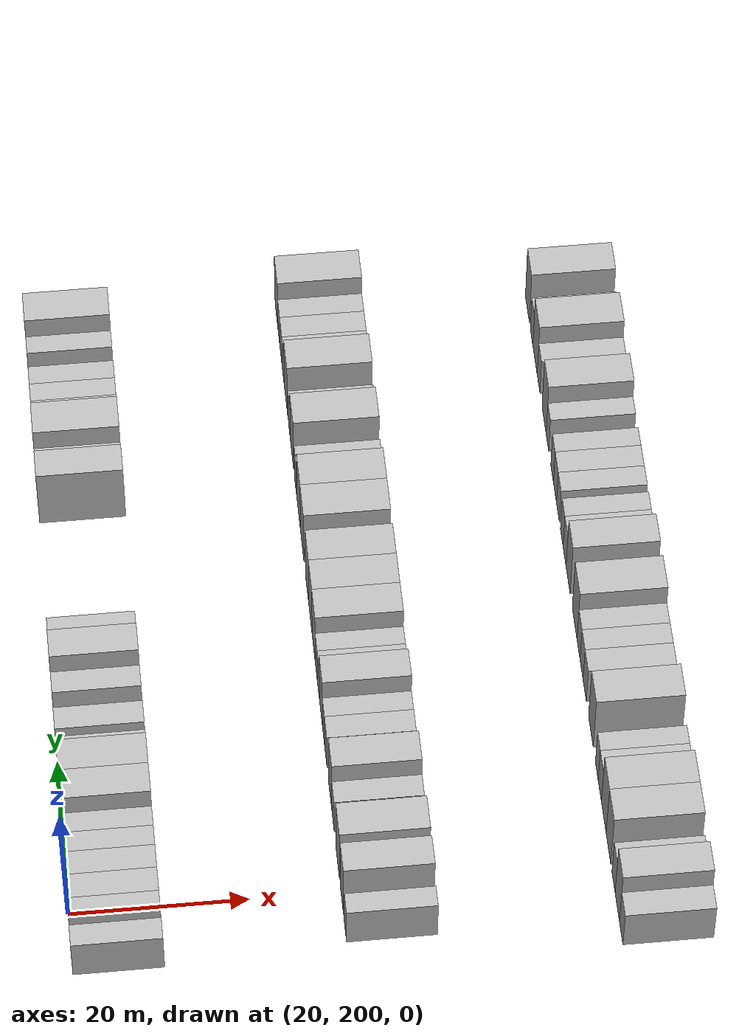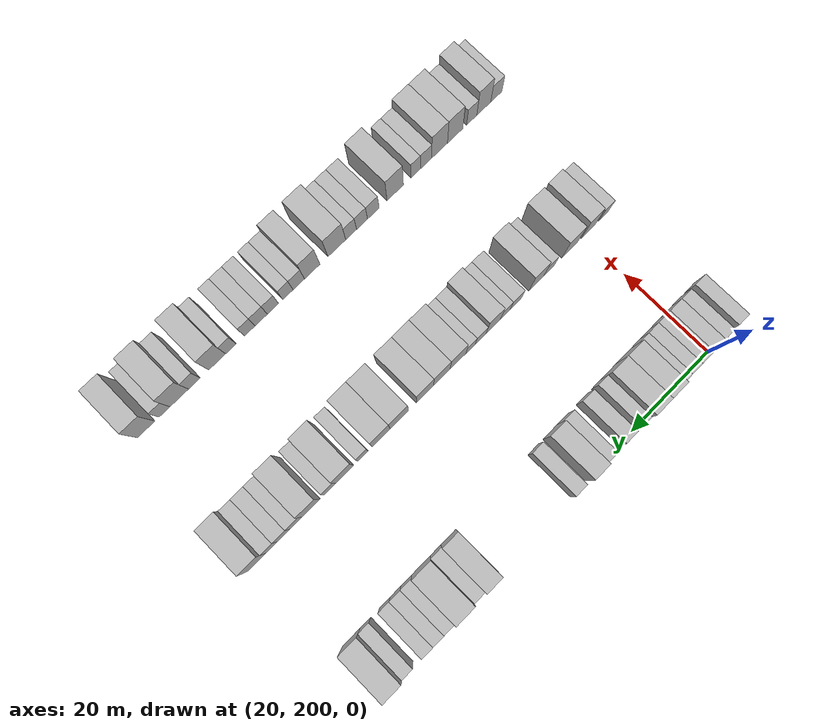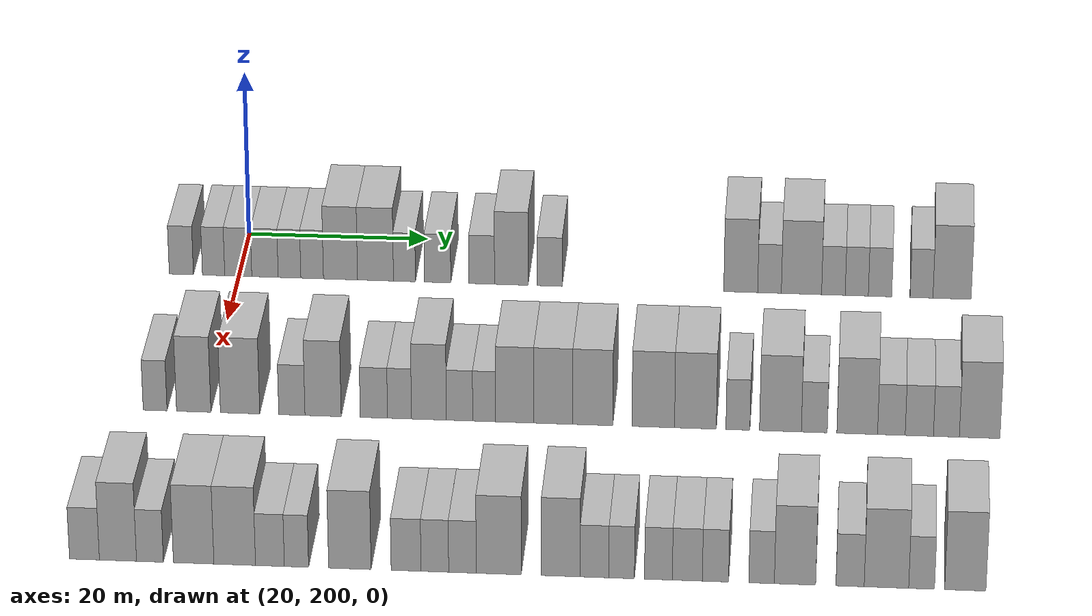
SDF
<sdf version="1.6">
 <world name="default">
  <model name="building_117">
   <static>1</static>
   <pose>25.0000 193.6157 0 0.000000 0.000000 0.000000</pose>
   <link name="link">
    <pose>0 0 3.00 0 0 0</pose>
    <collision name="collision"><geometry><box><size>10.0000 2.6684 6.0000</size></box></geometry></collision>
    <visual name="visual">
     <cast_shadows>0</cast_shadows>
     <geometry><box><size>10.0000 2.6684 6.0000</size></box></geometry>
     <material>
      <script>
       <uri>model://HANNAS_wall/materials/scripts</uri>
       <uri>model://HANNAS_wall/materials/textures</uri>
       <name>vrc/HANNAS_wall</name>
      </script>
     </material>
    </visual>
   </link>
  </model>
  <model name="building_118">
   <static>1</static>
   <pose>25.0000 197.1840 0 0.000000 0.000000 0.000000</pose>
   <link name="link">
    <pose>0 0 3.00 0 0 0</pose>
    <collision name="collision"><geometry><box><size>10.0000 2.4684 6.0000</size></box></geometry></collision>
    <visual name="visual">
     <cast_shadows>0</cast_shadows>
     <geometry><box><size>10.0000 2.4684 6.0000</size></box></geometry>
     <material>
      <script>
       <uri>model://HANNAS_wall/materials/scripts</uri>
       <uri>model://HANNAS_wall/materials/textures</uri>
       <name>vrc/HANNAS_wall</name>
      </script>
     </material>
    </visual>
   </link>
  </model>
  <model name="building_119">
   <static>1</static>
   <pose>25.0000 199.9133 0 0.000000 0.000000 0.000000</pose>
   <link name="link">
    <pose>0 0 3.00 0 0 0</pose>
    <collision name="collision"><geometry><box><size>10.0000 2.9902 6.0000</size></box></geometry></collision>
    <visual name="visual">
     <cast_shadows>0</cast_shadows>
     <geometry><box><size>10.0000 2.9902 6.0000</size></box></geometry>
     <material>
      <script>
       <uri>model://HANNAS_wall/materials/scripts</uri>
       <uri>model://HANNAS_wall/materials/textures</uri>
       <name>vrc/HANNAS_wall</name>
      </script>
     </material>
    </visual>
   </link>
  </model>
  <model name="building_120">
   <static>1</static>
   <pose>25.0000 202.8676 0 0.000000 0.000000 0.000000</pose>
   <link name="link">
    <pose>0 0 3.00 0 0 0</pose>
    <collision name="collision"><geometry><box><size>10.0000 2.9184 6.0000</size></box></geometry></collision>
    <visual name="visual">
     <cast_shadows>0</cast_shadows>
     <geometry><box><size>10.0000 2.9184 6.0000</size></box></geometry>
     <material>
      <script>
       <uri>model://HANNAS_wall/materials/scripts</uri>
       <uri>model://HANNAS_wall/materials/textures</uri>
       <name>vrc/HANNAS_wall</name>
      </script>
     </material>
    </visual>
   </link>
  </model>
  <model name="building_121">
   <static>1</static>
   <pose>25.0000 205.5789 0 0.000000 0.000000 0.000000</pose>
   <link name="link">
    <pose>0 0 3.00 0 0 0</pose>
    <collision name="collision"><geometry><box><size>10.0000 2.5044 6.0000</size></box></geometry></collision>
    <visual name="visual">
     <cast_shadows>0</cast_shadows>
     <geometry><box><size>10.0000 2.5044 6.0000</size></box></geometry>
     <material>
      <script>
       <uri>model://HANNAS_wall/materials/scripts</uri>
       <uri>model://HANNAS_wall/materials/textures</uri>
       <name>vrc/HANNAS_wall</name>
      </script>
     </material>
    </visual>
   </link>
  </model>
  <model name="building_122">
   <static>1</static>
   <pose>25.0000 208.0792 0 0.000000 0.000000 0.000000</pose>
   <link name="link">
    <pose>0 0 3.00 0 0 0</pose>
    <collision name="collision"><geometry><box><size>10.0000 2.4962 6.0000</size></box></geometry></collision>
    <visual name="visual">
     <cast_shadows>0</cast_shadows>
     <geometry><box><size>10.0000 2.4962 6.0000</size></box></geometry>
     <material>
      <script>
       <uri>model://HANNAS_wall/materials/scripts</uri>
       <uri>model://HANNAS_wall/materials/textures</uri>
       <name>vrc/HANNAS_wall</name>
      </script>
     </material>
    </visual>
   </link>
  </model>
  <model name="building_123">
   <static>1</static>
   <pose>25.0000 211.2091 0 0.000000 0.000000 0.000000</pose>
   <link name="link">
    <pose>0 0 4.50 0 0 0</pose>
    <collision name="collision"><geometry><box><size>10.0000 3.7634 9.0000</size></box></geometry></collision>
    <visual name="visual">
     <cast_shadows>0</cast_shadows>
     <geometry><box><size>10.0000 3.7634 9.0000</size></box></geometry>
     <material>
      <script>
       <uri>model://HANNAS_wall/materials/scripts</uri>
       <uri>model://HANNAS_wall/materials/textures</uri>
       <name>vrc/HANNAS_wall</name>
      </script>
     </material>
    </visual>
   </link>
  </model>
  <model name="building_124">
   <static>1</static>
   <pose>25.0000 215.0703 0 0.000000 0.000000 0.000000</pose>
   <link name="link">
    <pose>0 0 4.50 0 0 0</pose>
    <collision name="collision"><geometry><box><size>10.0000 3.9590 9.0000</size></box></geometry></collision>
    <visual name="visual">
     <cast_shadows>0</cast_shadows>
     <geometry><box><size>10.0000 3.9590 9.0000</size></box></geometry>
     <material>
      <script>
       <uri>model://HANNAS_wall/materials/scripts</uri>
       <uri>model://HANNAS_wall/materials/textures</uri>
       <name>vrc/HANNAS_wall</name>
      </script>
     </material>
    </visual>
   </link>
  </model>
  <model name="building_125">
   <static>1</static>
   <pose>25.0000 218.2602 0 0.000000 0.000000 0.000000</pose>
   <link name="link">
    <pose>0 0 3.00 0 0 0</pose>
    <collision name="collision"><geometry><box><size>10.0000 2.4207 6.0000</size></box></geometry></collision>
    <visual name="visual">
     <cast_shadows>0</cast_shadows>
     <geometry><box><size>10.0000 2.4207 6.0000</size></box></geometry>
     <material>
      <script>
       <uri>model://HANNAS_wall/materials/scripts</uri>
       <uri>model://HANNAS_wall/materials/textures</uri>
       <name>vrc/HANNAS_wall</name>
      </script>
     </material>
    </visual>
   </link>
  </model>
  <model name="building_126">
   <static>1</static>
   <pose>25.0000 221.9155 0 0.000000 0.000000 0.000000</pose>
   <link name="link">
    <pose>0 0 3.00 0 0 0</pose>
    <collision name="collision"><geometry><box><size>10.0000 2.8899 6.0000</size></box></geometry></collision>
    <visual name="visual">
     <cast_shadows>0</cast_shadows>
     <geometry><box><size>10.0000 2.8899 6.0000</size></box></geometry>
     <material>
      <script>
       <uri>model://HANNAS_wall/materials/scripts</uri>
       <uri>model://HANNAS_wall/materials/textures</uri>
       <name>vrc/HANNAS_wall</name>
      </script>
     </material>
    </visual>
   </link>
  </model>
  <model name="building_127">
   <static>1</static>
   <pose>25.0000 226.7656 0 0.000000 0.000000 0.000000</pose>
   <link name="link">
    <pose>0 0 3.00 0 0 0</pose>
    <collision name="collision"><geometry><box><size>10.0000 2.8103 6.0000</size></box></geometry></collision>
    <visual name="visual">
     <cast_shadows>0</cast_shadows>
     <geometry><box><size>10.0000 2.8103 6.0000</size></box></geometry>
     <material>
      <script>
       <uri>model://HANNAS_wall/materials/scripts</uri>
       <uri>model://HANNAS_wall/materials/textures</uri>
       <name>vrc/HANNAS_wall</name>
      </script>
     </material>
    </visual>
   </link>
  </model>
  <model name="building_128">
   <static>1</static>
   <pose>25.0000 230.0128 0 0.000000 0.000000 0.000000</pose>
   <link name="link">
    <pose>0 0 4.50 0 0 0</pose>
    <collision name="collision"><geometry><box><size>10.0000 3.6841 9.0000</size></box></geometry></collision>
    <visual name="visual">
     <cast_shadows>0</cast_shadows>
     <geometry><box><size>10.0000 3.6841 9.0000</size></box></geometry>
     <material>
      <script>
       <uri>model://HANNAS_wall/materials/scripts</uri>
       <uri>model://HANNAS_wall/materials/textures</uri>
       <name>vrc/HANNAS_wall</name>
      </script>
     </material>
    </visual>
   </link>
  </model>
  <model name="building_129">
   <static>1</static>
   <pose>25.0000 234.2269 0 0.000000 0.000000 0.000000</pose>
   <link name="link">
    <pose>0 0 3.00 0 0 0</pose>
    <collision name="collision"><geometry><box><size>10.0000 2.7442 6.0000</size></box></geometry></collision>
    <visual name="visual">
     <cast_shadows>0</cast_shadows>
     <geometry><box><size>10.0000 2.7442 6.0000</size></box></geometry>
     <material>
      <script>
       <uri>model://HANNAS_wall/materials/scripts</uri>
       <uri>model://HANNAS_wall/materials/textures</uri>
       <name>vrc/HANNAS_wall</name>
      </script>
     </material>
    </visual>
   </link>
  </model>
  <model name="building_130">
   <static>1</static>
   <pose>25.0000 255.1570 0 0.000000 0.000000 0.000000</pose>
   <link name="link">
    <pose>0 0 4.50 0 0 0</pose>
    <collision name="collision"><geometry><box><size>10.0000 3.7054 9.0000</size></box></geometry></collision>
    <visual name="visual">
     <cast_shadows>0</cast_shadows>
     <geometry><box><size>10.0000 3.7054 9.0000</size></box></geometry>
     <material>
      <script>
       <uri>model://HANNAS_wall/materials/scripts</uri>
       <uri>model://HANNAS_wall/materials/textures</uri>
       <name>vrc/HANNAS_wall</name>
      </script>
     </material>
    </visual>
   </link>
  </model>
  <model name="building_131">
   <static>1</static>
   <pose>25.0000 258.3027 0 0.000000 0.000000 0.000000</pose>
   <link name="link">
    <pose>0 0 3.00 0 0 0</pose>
    <collision name="collision"><geometry><box><size>10.0000 2.5860 6.0000</size></box></geometry></collision>
    <visual name="visual">
     <cast_shadows>0</cast_shadows>
     <geometry><box><size>10.0000 2.5860 6.0000</size></box></geometry>
     <material>
      <script>
       <uri>model://HANNAS_wall/materials/scripts</uri>
       <uri>model://HANNAS_wall/materials/textures</uri>
       <name>vrc/HANNAS_wall</name>
      </script>
     </material>
    </visual>
   </link>
  </model>
  <model name="building_132">
   <static>1</static>
   <pose>25.0000 261.7933 0 0.000000 0.000000 0.000000</pose>
   <link name="link">
    <pose>0 0 4.50 0 0 0</pose>
    <collision name="collision"><geometry><box><size>10.0000 4.3951 9.0000</size></box></geometry></collision>
    <visual name="visual">
     <cast_shadows>0</cast_shadows>
     <geometry><box><size>10.0000 4.3951 9.0000</size></box></geometry>
     <material>
      <script>
       <uri>model://HANNAS_wall/materials/scripts</uri>
       <uri>model://HANNAS_wall/materials/textures</uri>
       <name>vrc/HANNAS_wall</name>
      </script>
     </material>
    </visual>
   </link>
  </model>
  <model name="building_133">
   <static>1</static>
   <pose>25.0000 265.2767 0 0.000000 0.000000 0.000000</pose>
   <link name="link">
    <pose>0 0 3.00 0 0 0</pose>
    <collision name="collision"><geometry><box><size>10.0000 2.5717 6.0000</size></box></geometry></collision>
    <visual name="visual">
     <cast_shadows>0</cast_shadows>
     <geometry><box><size>10.0000 2.5717 6.0000</size></box></geometry>
     <material>
      <script>
       <uri>model://HANNAS_wall/materials/scripts</uri>
       <uri>model://HANNAS_wall/materials/textures</uri>
       <name>vrc/HANNAS_wall</name>
      </script>
     </material>
    </visual>
   </link>
  </model>
  <model name="building_134">
   <static>1</static>
   <pose>25.0000 267.8227 0 0.000000 0.000000 0.000000</pose>
   <link name="link">
    <pose>0 0 3.00 0 0 0</pose>
    <collision name="collision"><geometry><box><size>10.0000 2.5203 6.0000</size></box></geometry></collision>
    <visual name="visual">
     <cast_shadows>0</cast_shadows>
     <geometry><box><size>10.0000 2.5203 6.0000</size></box></geometry>
     <material>
      <script>
       <uri>model://HANNAS_wall/materials/scripts</uri>
       <uri>model://HANNAS_wall/materials/textures</uri>
       <name>vrc/HANNAS_wall</name>
      </script>
     </material>
    </visual>
   </link>
  </model>
  <model name="building_135">
   <static>1</static>
   <pose>25.0000 270.3590 0 0.000000 0.000000 0.000000</pose>
   <link name="link">
    <pose>0 0 3.00 0 0 0</pose>
    <collision name="collision"><geometry><box><size>10.0000 2.5524 6.0000</size></box></geometry></collision>
    <visual name="visual">
     <cast_shadows>0</cast_shadows>
     <geometry><box><size>10.0000 2.5524 6.0000</size></box></geometry>
     <material>
      <script>
       <uri>model://HANNAS_wall/materials/scripts</uri>
       <uri>model://HANNAS_wall/materials/textures</uri>
       <name>vrc/HANNAS_wall</name>
      </script>
     </material>
    </visual>
   </link>
  </model>
  <model name="building_136">
   <static>1</static>
   <pose>25.0000 274.8785 0 0.000000 0.000000 0.000000</pose>
   <link name="link">
    <pose>0 0 3.00 0 0 0</pose>
    <collision name="collision"><geometry><box><size>10.0000 2.4865 6.0000</size></box></geometry></collision>
    <visual name="visual">
     <cast_shadows>0</cast_shadows>
     <geometry><box><size>10.0000 2.4865 6.0000</size></box></geometry>
     <material>
      <script>
       <uri>model://HANNAS_wall/materials/scripts</uri>
       <uri>model://HANNAS_wall/materials/textures</uri>
       <name>vrc/HANNAS_wall</name>
      </script>
     </material>
    </visual>
   </link>
  </model>
  <model name="building_137">
   <static>1</static>
   <pose>25.0000 278.1976 0 0.000000 0.000000 0.000000</pose>
   <link name="link">
    <pose>0 0 4.50 0 0 0</pose>
    <collision name="collision"><geometry><box><size>10.0000 4.1517 9.0000</size></box></geometry></collision>
    <visual name="visual">
     <cast_shadows>0</cast_shadows>
     <geometry><box><size>10.0000 4.1517 9.0000</size></box></geometry>
     <material>
      <script>
       <uri>model://HANNAS_wall/materials/scripts</uri>
       <uri>model://HANNAS_wall/materials/textures</uri>
       <name>vrc/HANNAS_wall</name>
      </script>
     </material>
    </visual>
   </link>
  </model>
  <model name="building_244">
   <static>1</static>
   <pose>55.0000 194.7780 0 0.000000 0.000000 0.000000</pose>
   <link name="link">
    <pose>0 0 3.00 0 0 0</pose>
    <collision name="collision"><geometry><box><size>10.0000 2.5157 6.0000</size></box></geometry></collision>
    <visual name="visual">
     <cast_shadows>0</cast_shadows>
     <geometry><box><size>10.0000 2.5157 6.0000</size></box></geometry>
     <material>
      <script>
       <uri>model://HANNAS_wall/materials/scripts</uri>
       <uri>model://HANNAS_wall/materials/textures</uri>
       <name>vrc/HANNAS_wall</name>
      </script>
     </material>
    </visual>
   </link>
  </model>
  <model name="building_245">
   <static>1</static>
   <pose>55.0000 198.8455 0 0.000000 0.000000 0.000000</pose>
   <link name="link">
    <pose>0 0 4.50 0 0 0</pose>
    <collision name="collision"><geometry><box><size>10.0000 3.6194 9.0000</size></box></geometry></collision>
    <visual name="visual">
     <cast_shadows>0</cast_shadows>
     <geometry><box><size>10.0000 3.6194 9.0000</size></box></geometry>
     <material>
      <script>
       <uri>model://HANNAS_wall/materials/scripts</uri>
       <uri>model://HANNAS_wall/materials/textures</uri>
       <name>vrc/HANNAS_wall</name>
      </script>
     </material>
    </visual>
   </link>
  </model>
  <model name="building_246">
   <static>1</static>
   <pose>55.0000 203.7291 0 0.000000 0.000000 0.000000</pose>
   <link name="link">
    <pose>0 0 4.50 0 0 0</pose>
    <collision name="collision"><geometry><box><size>10.0000 4.1476 9.0000</size></box></geometry></collision>
    <visual name="visual">
     <cast_shadows>0</cast_shadows>
     <geometry><box><size>10.0000 4.1476 9.0000</size></box></geometry>
     <material>
      <script>
       <uri>model://HANNAS_wall/materials/scripts</uri>
       <uri>model://HANNAS_wall/materials/textures</uri>
       <name>vrc/HANNAS_wall</name>
      </script>
     </material>
    </visual>
   </link>
  </model>
  <model name="building_247">
   <static>1</static>
   <pose>55.0000 209.1812 0 0.000000 0.000000 0.000000</pose>
   <link name="link">
    <pose>0 0 3.00 0 0 0</pose>
    <collision name="collision"><geometry><box><size>10.0000 2.7566 6.0000</size></box></geometry></collision>
    <visual name="visual">
     <cast_shadows>0</cast_shadows>
     <geometry><box><size>10.0000 2.7566 6.0000</size></box></geometry>
     <material>
      <script>
       <uri>model://HANNAS_wall/materials/scripts</uri>
       <uri>model://HANNAS_wall/materials/textures</uri>
       <name>vrc/HANNAS_wall</name>
      </script>
     </material>
    </visual>
   </link>
  </model>
  <model name="building_248">
   <static>1</static>
   <pose>55.0000 212.4629 0 0.000000 0.000000 0.000000</pose>
   <link name="link">
    <pose>0 0 4.50 0 0 0</pose>
    <collision name="collision"><geometry><box><size>10.0000 3.8070 9.0000</size></box></geometry></collision>
    <visual name="visual">
     <cast_shadows>0</cast_shadows>
     <geometry><box><size>10.0000 3.8070 9.0000</size></box></geometry>
     <material>
      <script>
       <uri>model://HANNAS_wall/materials/scripts</uri>
       <uri>model://HANNAS_wall/materials/textures</uri>
       <name>vrc/HANNAS_wall</name>
      </script>
     </material>
    </visual>
   </link>
  </model>
  <model name="building_249">
   <static>1</static>
   <pose>55.0000 217.7997 0 0.000000 0.000000 0.000000</pose>
   <link name="link">
    <pose>0 0 3.00 0 0 0</pose>
    <collision name="collision"><geometry><box><size>10.0000 2.8664 6.0000</size></box></geometry></collision>
    <visual name="visual">
     <cast_shadows>0</cast_shadows>
     <geometry><box><size>10.0000 2.8664 6.0000</size></box></geometry>
     <material>
      <script>
       <uri>model://HANNAS_wall/materials/scripts</uri>
       <uri>model://HANNAS_wall/materials/textures</uri>
       <name>vrc/HANNAS_wall</name>
      </script>
     </material>
    </visual>
   </link>
  </model>
  <model name="building_250">
   <static>1</static>
   <pose>55.0000 220.4899 0 0.000000 0.000000 0.000000</pose>
   <link name="link">
    <pose>0 0 3.00 0 0 0</pose>
    <collision name="collision"><geometry><box><size>10.0000 2.5140 6.0000</size></box></geometry></collision>
    <visual name="visual">
     <cast_shadows>0</cast_shadows>
     <geometry><box><size>10.0000 2.5140 6.0000</size></box></geometry>
     <material>
      <script>
       <uri>model://HANNAS_wall/materials/scripts</uri>
       <uri>model://HANNAS_wall/materials/textures</uri>
       <name>vrc/HANNAS_wall</name>
      </script>
     </material>
    </visual>
   </link>
  </model>
  <model name="building_251">
   <static>1</static>
   <pose>55.0000 223.5747 0 0.000000 0.000000 0.000000</pose>
   <link name="link">
    <pose>0 0 4.50 0 0 0</pose>
    <collision name="collision"><geometry><box><size>10.0000 3.6557 9.0000</size></box></geometry></collision>
    <visual name="visual">
     <cast_shadows>0</cast_shadows>
     <geometry><box><size>10.0000 3.6557 9.0000</size></box></geometry>
     <material>
      <script>
       <uri>model://HANNAS_wall/materials/scripts</uri>
       <uri>model://HANNAS_wall/materials/textures</uri>
       <name>vrc/HANNAS_wall</name>
      </script>
     </material>
    </visual>
   </link>
  </model>
  <model name="building_252">
   <static>1</static>
   <pose>55.0000 226.7797 0 0.000000 0.000000 0.000000</pose>
   <link name="link">
    <pose>0 0 3.00 0 0 0</pose>
    <collision name="collision"><geometry><box><size>10.0000 2.7542 6.0000</size></box></geometry></collision>
    <visual name="visual">
     <cast_shadows>0</cast_shadows>
     <geometry><box><size>10.0000 2.7542 6.0000</size></box></geometry>
     <material>
      <script>
       <uri>model://HANNAS_wall/materials/scripts</uri>
       <uri>model://HANNAS_wall/materials/textures</uri>
       <name>vrc/HANNAS_wall</name>
      </script>
     </material>
    </visual>
   </link>
  </model>
  <model name="building_253">
   <static>1</static>
   <pose>55.0000 229.3570 0 0.000000 0.000000 0.000000</pose>
   <link name="link">
    <pose>0 0 3.00 0 0 0</pose>
    <collision name="collision"><geometry><box><size>10.0000 2.4004 6.0000</size></box></geometry></collision>
    <visual name="visual">
     <cast_shadows>0</cast_shadows>
     <geometry><box><size>10.0000 2.4004 6.0000</size></box></geometry>
     <material>
      <script>
       <uri>model://HANNAS_wall/materials/scripts</uri>
       <uri>model://HANNAS_wall/materials/textures</uri>
       <name>vrc/HANNAS_wall</name>
      </script>
     </material>
    </visual>
   </link>
  </model>
  <model name="building_254">
   <static>1</static>
   <pose>55.0000 232.5470 0 0.000000 0.000000 0.000000</pose>
   <link name="link">
    <pose>0 0 4.50 0 0 0</pose>
    <collision name="collision"><geometry><box><size>10.0000 3.9797 9.0000</size></box></geometry></collision>
    <visual name="visual">
     <cast_shadows>0</cast_shadows>
     <geometry><box><size>10.0000 3.9797 9.0000</size></box></geometry>
     <material>
      <script>
       <uri>model://HANNAS_wall/materials/scripts</uri>
       <uri>model://HANNAS_wall/materials/textures</uri>
       <name>vrc/HANNAS_wall</name>
      </script>
     </material>
    </visual>
   </link>
  </model>
  <model name="building_255">
   <static>1</static>
   <pose>55.0000 236.5752 0 0.000000 0.000000 0.000000</pose>
   <link name="link">
    <pose>0 0 4.50 0 0 0</pose>
    <collision name="collision"><geometry><box><size>10.0000 4.0766 9.0000</size></box></geometry></collision>
    <visual name="visual">
     <cast_shadows>0</cast_shadows>
     <geometry><box><size>10.0000 4.0766 9.0000</size></box></geometry>
     <material>
      <script>
       <uri>model://HANNAS_wall/materials/scripts</uri>
       <uri>model://HANNAS_wall/materials/textures</uri>
       <name>vrc/HANNAS_wall</name>
      </script>
     </material>
    </visual>
   </link>
  </model>
  <model name="building_256">
   <static>1</static>
   <pose>55.0000 240.7073 0 0.000000 0.000000 0.000000</pose>
   <link name="link">
    <pose>0 0 4.50 0 0 0</pose>
    <collision name="collision"><geometry><box><size>10.0000 4.1876 9.0000</size></box></geometry></collision>
    <visual name="visual">
     <cast_shadows>0</cast_shadows>
     <geometry><box><size>10.0000 4.1876 9.0000</size></box></geometry>
     <material>
      <script>
       <uri>model://HANNAS_wall/materials/scripts</uri>
       <uri>model://HANNAS_wall/materials/textures</uri>
       <name>vrc/HANNAS_wall</name>
      </script>
     </material>
    </visual>
   </link>
  </model>
  <model name="building_257">
   <static>1</static>
   <pose>55.0000 247.0190 0 0.000000 0.000000 0.000000</pose>
   <link name="link">
    <pose>0 0 4.50 0 0 0</pose>
    <collision name="collision"><geometry><box><size>10.0000 4.4359 9.0000</size></box></geometry></collision>
    <visual name="visual">
     <cast_shadows>0</cast_shadows>
     <geometry><box><size>10.0000 4.4359 9.0000</size></box></geometry>
     <material>
      <script>
       <uri>model://HANNAS_wall/materials/scripts</uri>
       <uri>model://HANNAS_wall/materials/textures</uri>
       <name>vrc/HANNAS_wall</name>
      </script>
     </material>
    </visual>
   </link>
  </model>
  <model name="building_258">
   <static>1</static>
   <pose>55.0000 251.4141 0 0.000000 0.000000 0.000000</pose>
   <link name="link">
    <pose>0 0 4.50 0 0 0</pose>
    <collision name="collision"><geometry><box><size>10.0000 4.3542 9.0000</size></box></geometry></collision>
    <visual name="visual">
     <cast_shadows>0</cast_shadows>
     <geometry><box><size>10.0000 4.3542 9.0000</size></box></geometry>
     <material>
      <script>
       <uri>model://HANNAS_wall/materials/scripts</uri>
       <uri>model://HANNAS_wall/materials/textures</uri>
       <name>vrc/HANNAS_wall</name>
      </script>
     </material>
    </visual>
   </link>
  </model>
  <model name="building_259">
   <static>1</static>
   <pose>55.0000 255.8382 0 0.000000 0.000000 0.000000</pose>
   <link name="link">
    <pose>0 0 3.00 0 0 0</pose>
    <collision name="collision"><geometry><box><size>10.0000 2.4940 6.0000</size></box></geometry></collision>
    <visual name="visual">
     <cast_shadows>0</cast_shadows>
     <geometry><box><size>10.0000 2.4940 6.0000</size></box></geometry>
     <material>
      <script>
       <uri>model://HANNAS_wall/materials/scripts</uri>
       <uri>model://HANNAS_wall/materials/textures</uri>
       <name>vrc/HANNAS_wall</name>
      </script>
     </material>
    </visual>
   </link>
  </model>
  <model name="building_260">
   <static>1</static>
   <pose>55.0000 260.2617 0 0.000000 0.000000 0.000000</pose>
   <link name="link">
    <pose>0 0 4.50 0 0 0</pose>
    <collision name="collision"><geometry><box><size>10.0000 4.3530 9.0000</size></box></geometry></collision>
    <visual name="visual">
     <cast_shadows>0</cast_shadows>
     <geometry><box><size>10.0000 4.3530 9.0000</size></box></geometry>
     <material>
      <script>
       <uri>model://HANNAS_wall/materials/scripts</uri>
       <uri>model://HANNAS_wall/materials/textures</uri>
       <name>vrc/HANNAS_wall</name>
      </script>
     </material>
    </visual>
   </link>
  </model>
  <model name="building_261">
   <static>1</static>
   <pose>55.0000 263.7823 0 0.000000 0.000000 0.000000</pose>
   <link name="link">
    <pose>0 0 3.00 0 0 0</pose>
    <collision name="collision"><geometry><box><size>10.0000 2.6881 6.0000</size></box></geometry></collision>
    <visual name="visual">
     <cast_shadows>0</cast_shadows>
     <geometry><box><size>10.0000 2.6881 6.0000</size></box></geometry>
     <material>
      <script>
       <uri>model://HANNAS_wall/materials/scripts</uri>
       <uri>model://HANNAS_wall/materials/textures</uri>
       <name>vrc/HANNAS_wall</name>
      </script>
     </material>
    </visual>
   </link>
  </model>
  <model name="building_262">
   <static>1</static>
   <pose>55.0000 268.2366 0 0.000000 0.000000 0.000000</pose>
   <link name="link">
    <pose>0 0 4.50 0 0 0</pose>
    <collision name="collision"><geometry><box><size>10.0000 4.2204 9.0000</size></box></geometry></collision>
    <visual name="visual">
     <cast_shadows>0</cast_shadows>
     <geometry><box><size>10.0000 4.2204 9.0000</size></box></geometry>
     <material>
      <script>
       <uri>model://HANNAS_wall/materials/scripts</uri>
       <uri>model://HANNAS_wall/materials/textures</uri>
       <name>vrc/HANNAS_wall</name>
      </script>
     </material>
    </visual>
   </link>
  </model>
  <model name="building_263">
   <static>1</static>
   <pose>55.0000 271.7790 0 0.000000 0.000000 0.000000</pose>
   <link name="link">
    <pose>0 0 3.00 0 0 0</pose>
    <collision name="collision"><geometry><box><size>10.0000 2.8643 6.0000</size></box></geometry></collision>
    <visual name="visual">
     <cast_shadows>0</cast_shadows>
     <geometry><box><size>10.0000 2.8643 6.0000</size></box></geometry>
     <material>
      <script>
       <uri>model://HANNAS_wall/materials/scripts</uri>
       <uri>model://HANNAS_wall/materials/textures</uri>
       <name>vrc/HANNAS_wall</name>
      </script>
     </material>
    </visual>
   </link>
  </model>
  <model name="building_264">
   <static>1</static>
   <pose>55.0000 274.6751 0 0.000000 0.000000 0.000000</pose>
   <link name="link">
    <pose>0 0 3.00 0 0 0</pose>
    <collision name="collision"><geometry><box><size>10.0000 2.9279 6.0000</size></box></geometry></collision>
    <visual name="visual">
     <cast_shadows>0</cast_shadows>
     <geometry><box><size>10.0000 2.9279 6.0000</size></box></geometry>
     <material>
      <script>
       <uri>model://HANNAS_wall/materials/scripts</uri>
       <uri>model://HANNAS_wall/materials/textures</uri>
       <name>vrc/HANNAS_wall</name>
      </script>
     </material>
    </visual>
   </link>
  </model>
  <model name="building_265">
   <static>1</static>
   <pose>55.0000 277.4817 0 0.000000 0.000000 0.000000</pose>
   <link name="link">
    <pose>0 0 3.00 0 0 0</pose>
    <collision name="collision"><geometry><box><size>10.0000 2.6854 6.0000</size></box></geometry></collision>
    <visual name="visual">
     <cast_shadows>0</cast_shadows>
     <geometry><box><size>10.0000 2.6854 6.0000</size></box></geometry>
     <material>
      <script>
       <uri>model://HANNAS_wall/materials/scripts</uri>
       <uri>model://HANNAS_wall/materials/textures</uri>
       <name>vrc/HANNAS_wall</name>
      </script>
     </material>
    </visual>
   </link>
  </model>
  <model name="building_266">
   <static>1</static>
   <pose>55.0000 280.9248 0 0.000000 0.000000 0.000000</pose>
   <link name="link">
    <pose>0 0 4.50 0 0 0</pose>
    <collision name="collision"><geometry><box><size>10.0000 4.2008 9.0000</size></box></geometry></collision>
    <visual name="visual">
     <cast_shadows>0</cast_shadows>
     <geometry><box><size>10.0000 4.2008 9.0000</size></box></geometry>
     <material>
      <script>
       <uri>model://HANNAS_wall/materials/scripts</uri>
       <uri>model://HANNAS_wall/materials/textures</uri>
       <name>vrc/HANNAS_wall</name>
      </script>
     </material>
    </visual>
   </link>
  </model>
  <model name="building_388">
   <static>1</static>
   <pose>85.0000 191.7627 0 0.000000 0.000000 0.000000</pose>
   <link name="link">
    <pose>0 0 3.00 0 0 0</pose>
    <collision name="collision"><geometry><box><size>10.0000 2.9922 6.0000</size></box></geometry></collision>
    <visual name="visual">
     <cast_shadows>0</cast_shadows>
     <geometry><box><size>10.0000 2.9922 6.0000</size></box></geometry>
     <material>
      <script>
       <uri>model://HANNAS_wall/materials/scripts</uri>
       <uri>model://HANNAS_wall/materials/textures</uri>
       <name>vrc/HANNAS_wall</name>
      </script>
     </material>
    </visual>
   </link>
  </model>
  <model name="building_389">
   <static>1</static>
   <pose>85.0000 195.1197 0 0.000000 0.000000 0.000000</pose>
   <link name="link">
    <pose>0 0 4.50 0 0 0</pose>
    <collision name="collision"><geometry><box><size>10.0000 3.7218 9.0000</size></box></geometry></collision>
    <visual name="visual">
     <cast_shadows>0</cast_shadows>
     <geometry><box><size>10.0000 3.7218 9.0000</size></box></geometry>
     <material>
      <script>
       <uri>model://HANNAS_wall/materials/scripts</uri>
       <uri>model://HANNAS_wall/materials/textures</uri>
       <name>vrc/HANNAS_wall</name>
      </script>
     </material>
    </visual>
   </link>
  </model>
  <model name="building_390">
   <static>1</static>
   <pose>85.0000 198.3272 0 0.000000 0.000000 0.000000</pose>
   <link name="link">
    <pose>0 0 3.00 0 0 0</pose>
    <collision name="collision"><geometry><box><size>10.0000 2.6933 6.0000</size></box></geometry></collision>
    <visual name="visual">
     <cast_shadows>0</cast_shadows>
     <geometry><box><size>10.0000 2.6933 6.0000</size></box></geometry>
     <material>
      <script>
       <uri>model://HANNAS_wall/materials/scripts</uri>
       <uri>model://HANNAS_wall/materials/textures</uri>
       <name>vrc/HANNAS_wall</name>
      </script>
     </material>
    </visual>
   </link>
  </model>
  <model name="building_391">
   <static>1</static>
   <pose>85.0000 202.7019 0 0.000000 0.000000 0.000000</pose>
   <link name="link">
    <pose>0 0 4.50 0 0 0</pose>
    <collision name="collision"><geometry><box><size>10.0000 4.0561 9.0000</size></box></geometry></collision>
    <visual name="visual">
     <cast_shadows>0</cast_shadows>
     <geometry><box><size>10.0000 4.0561 9.0000</size></box></geometry>
     <material>
      <script>
       <uri>model://HANNAS_wall/materials/scripts</uri>
       <uri>model://HANNAS_wall/materials/textures</uri>
       <name>vrc/HANNAS_wall</name>
      </script>
     </material>
    </visual>
   </link>
  </model>
  <model name="building_392">
   <static>1</static>
   <pose>85.0000 206.8115 0 0.000000 0.000000 0.000000</pose>
   <link name="link">
    <pose>0 0 4.50 0 0 0</pose>
    <collision name="collision"><geometry><box><size>10.0000 4.1630 9.0000</size></box></geometry></collision>
    <visual name="visual">
     <cast_shadows>0</cast_shadows>
     <geometry><box><size>10.0000 4.1630 9.0000</size></box></geometry>
     <material>
      <script>
       <uri>model://HANNAS_wall/materials/scripts</uri>
       <uri>model://HANNAS_wall/materials/textures</uri>
       <name>vrc/HANNAS_wall</name>
      </script>
     </material>
    </visual>
   </link>
  </model>
  <model name="building_393">
   <static>1</static>
   <pose>85.0000 210.3338 0 0.000000 0.000000 0.000000</pose>
   <link name="link">
    <pose>0 0 3.00 0 0 0</pose>
    <collision name="collision"><geometry><box><size>10.0000 2.8818 6.0000</size></box></geometry></collision>
    <visual name="visual">
     <cast_shadows>0</cast_shadows>
     <geometry><box><size>10.0000 2.8818 6.0000</size></box></geometry>
     <material>
      <script>
       <uri>model://HANNAS_wall/materials/scripts</uri>
       <uri>model://HANNAS_wall/materials/textures</uri>
       <name>vrc/HANNAS_wall</name>
      </script>
     </material>
    </visual>
   </link>
  </model>
  <model name="building_394">
   <static>1</static>
   <pose>85.0000 212.9844 0 0.000000 0.000000 0.000000</pose>
   <link name="link">
    <pose>0 0 3.00 0 0 0</pose>
    <collision name="collision"><geometry><box><size>10.0000 2.4195 6.0000</size></box></geometry></collision>
    <visual name="visual">
     <cast_shadows>0</cast_shadows>
     <geometry><box><size>10.0000 2.4195 6.0000</size></box></geometry>
     <material>
      <script>
       <uri>model://HANNAS_wall/materials/scripts</uri>
       <uri>model://HANNAS_wall/materials/textures</uri>
       <name>vrc/HANNAS_wall</name>
      </script>
     </material>
    </visual>
   </link>
  </model>
  <model name="building_395">
   <static>1</static>
   <pose>85.0000 218.3086 0 0.000000 0.000000 0.000000</pose>
   <link name="link">
    <pose>0 0 4.50 0 0 0</pose>
    <collision name="collision"><geometry><box><size>10.0000 4.2288 9.0000</size></box></geometry></collision>
    <visual name="visual">
     <cast_shadows>0</cast_shadows>
     <geometry><box><size>10.0000 4.2288 9.0000</size></box></geometry>
     <material>
      <script>
       <uri>model://HANNAS_wall/materials/scripts</uri>
       <uri>model://HANNAS_wall/materials/textures</uri>
       <name>vrc/HANNAS_wall</name>
      </script>
     </material>
    </visual>
   </link>
  </model>
  <model name="building_396">
   <static>1</static>
   <pose>85.0000 223.9092 0 0.000000 0.000000 0.000000</pose>
   <link name="link">
    <pose>0 0 3.00 0 0 0</pose>
    <collision name="collision"><geometry><box><size>10.0000 2.9724 6.0000</size></box></geometry></collision>
    <visual name="visual">
     <cast_shadows>0</cast_shadows>
     <geometry><box><size>10.0000 2.9724 6.0000</size></box></geometry>
     <material>
      <script>
       <uri>model://HANNAS_wall/materials/scripts</uri>
       <uri>model://HANNAS_wall/materials/textures</uri>
       <name>vrc/HANNAS_wall</name>
      </script>
     </material>
    </visual>
   </link>
  </model>
  <model name="building_397">
   <static>1</static>
   <pose>85.0000 226.7723 0 0.000000 0.000000 0.000000</pose>
   <link name="link">
    <pose>0 0 3.00 0 0 0</pose>
    <collision name="collision"><geometry><box><size>10.0000 2.7539 6.0000</size></box></geometry></collision>
    <visual name="visual">
     <cast_shadows>0</cast_shadows>
     <geometry><box><size>10.0000 2.7539 6.0000</size></box></geometry>
     <material>
      <script>
       <uri>model://HANNAS_wall/materials/scripts</uri>
       <uri>model://HANNAS_wall/materials/textures</uri>
       <name>vrc/HANNAS_wall</name>
      </script>
     </material>
    </visual>
   </link>
  </model>
  <model name="building_398">
   <static>1</static>
   <pose>85.0000 229.5227 0 0.000000 0.000000 0.000000</pose>
   <link name="link">
    <pose>0 0 3.00 0 0 0</pose>
    <collision name="collision"><geometry><box><size>10.0000 2.7468 6.0000</size></box></geometry></collision>
    <visual name="visual">
     <cast_shadows>0</cast_shadows>
     <geometry><box><size>10.0000 2.7468 6.0000</size></box></geometry>
     <material>
      <script>
       <uri>model://HANNAS_wall/materials/scripts</uri>
       <uri>model://HANNAS_wall/materials/textures</uri>
       <name>vrc/HANNAS_wall</name>
      </script>
     </material>
    </visual>
   </link>
  </model>
  <model name="building_399">
   <static>1</static>
   <pose>85.0000 233.1284 0 0.000000 0.000000 0.000000</pose>
   <link name="link">
    <pose>0 0 4.50 0 0 0</pose>
    <collision name="collision"><geometry><box><size>10.0000 4.4647 9.0000</size></box></geometry></collision>
    <visual name="visual">
     <cast_shadows>0</cast_shadows>
     <geometry><box><size>10.0000 4.4647 9.0000</size></box></geometry>
     <material>
      <script>
       <uri>model://HANNAS_wall/materials/scripts</uri>
       <uri>model://HANNAS_wall/materials/textures</uri>
       <name>vrc/HANNAS_wall</name>
      </script>
     </material>
    </visual>
   </link>
  </model>
  <model name="building_400">
   <static>1</static>
   <pose>85.0000 239.2844 0 0.000000 0.000000 0.000000</pose>
   <link name="link">
    <pose>0 0 4.50 0 0 0</pose>
    <collision name="collision"><geometry><box><size>10.0000 3.8473 9.0000</size></box></geometry></collision>
    <visual name="visual">
     <cast_shadows>0</cast_shadows>
     <geometry><box><size>10.0000 3.8473 9.0000</size></box></geometry>
     <material>
      <script>
       <uri>model://HANNAS_wall/materials/scripts</uri>
       <uri>model://HANNAS_wall/materials/textures</uri>
       <name>vrc/HANNAS_wall</name>
      </script>
     </material>
    </visual>
   </link>
  </model>
  <model name="building_401">
   <static>1</static>
   <pose>85.0000 242.6284 0 0.000000 0.000000 0.000000</pose>
   <link name="link">
    <pose>0 0 3.00 0 0 0</pose>
    <collision name="collision"><geometry><box><size>10.0000 2.8405 6.0000</size></box></geometry></collision>
    <visual name="visual">
     <cast_shadows>0</cast_shadows>
     <geometry><box><size>10.0000 2.8405 6.0000</size></box></geometry>
     <material>
      <script>
       <uri>model://HANNAS_wall/materials/scripts</uri>
       <uri>model://HANNAS_wall/materials/textures</uri>
       <name>vrc/HANNAS_wall</name>
      </script>
     </material>
    </visual>
   </link>
  </model>
  <model name="building_402">
   <static>1</static>
   <pose>85.0000 245.3175 0 0.000000 0.000000 0.000000</pose>
   <link name="link">
    <pose>0 0 3.00 0 0 0</pose>
    <collision name="collision"><geometry><box><size>10.0000 2.5377 6.0000</size></box></geometry></collision>
    <visual name="visual">
     <cast_shadows>0</cast_shadows>
     <geometry><box><size>10.0000 2.5377 6.0000</size></box></geometry>
     <material>
      <script>
       <uri>model://HANNAS_wall/materials/scripts</uri>
       <uri>model://HANNAS_wall/materials/textures</uri>
       <name>vrc/HANNAS_wall</name>
      </script>
     </material>
    </visual>
   </link>
  </model>
  <model name="building_403">
   <static>1</static>
   <pose>85.0000 248.9648 0 0.000000 0.000000 0.000000</pose>
   <link name="link">
    <pose>0 0 3.00 0 0 0</pose>
    <collision name="collision"><geometry><box><size>10.0000 2.7569 6.0000</size></box></geometry></collision>
    <visual name="visual">
     <cast_shadows>0</cast_shadows>
     <geometry><box><size>10.0000 2.7569 6.0000</size></box></geometry>
     <material>
      <script>
       <uri>model://HANNAS_wall/materials/scripts</uri>
       <uri>model://HANNAS_wall/materials/textures</uri>
       <name>vrc/HANNAS_wall</name>
      </script>
     </material>
    </visual>
   </link>
  </model>
  <model name="building_404">
   <static>1</static>
   <pose>85.0000 251.8265 0 0.000000 0.000000 0.000000</pose>
   <link name="link">
    <pose>0 0 3.00 0 0 0</pose>
    <collision name="collision"><geometry><box><size>10.0000 2.9664 6.0000</size></box></geometry></collision>
    <visual name="visual">
     <cast_shadows>0</cast_shadows>
     <geometry><box><size>10.0000 2.9664 6.0000</size></box></geometry>
     <material>
      <script>
       <uri>model://HANNAS_wall/materials/scripts</uri>
       <uri>model://HANNAS_wall/materials/textures</uri>
       <name>vrc/HANNAS_wall</name>
      </script>
     </material>
    </visual>
   </link>
  </model>
  <model name="building_405">
   <static>1</static>
   <pose>85.0000 254.6063 0 0.000000 0.000000 0.000000</pose>
   <link name="link">
    <pose>0 0 3.00 0 0 0</pose>
    <collision name="collision"><geometry><box><size>10.0000 2.5933 6.0000</size></box></geometry></collision>
    <visual name="visual">
     <cast_shadows>0</cast_shadows>
     <geometry><box><size>10.0000 2.5933 6.0000</size></box></geometry>
     <material>
      <script>
       <uri>model://HANNAS_wall/materials/scripts</uri>
       <uri>model://HANNAS_wall/materials/textures</uri>
       <name>vrc/HANNAS_wall</name>
      </script>
     </material>
    </visual>
   </link>
  </model>
  <model name="building_406">
   <static>1</static>
   <pose>85.0000 259.1657 0 0.000000 0.000000 0.000000</pose>
   <link name="link">
    <pose>0 0 3.00 0 0 0</pose>
    <collision name="collision"><geometry><box><size>10.0000 2.5256 6.0000</size></box></geometry></collision>
    <visual name="visual">
     <cast_shadows>0</cast_shadows>
     <geometry><box><size>10.0000 2.5256 6.0000</size></box></geometry>
     <material>
      <script>
       <uri>model://HANNAS_wall/materials/scripts</uri>
       <uri>model://HANNAS_wall/materials/textures</uri>
       <name>vrc/HANNAS_wall</name>
      </script>
     </material>
    </visual>
   </link>
  </model>
  <model name="building_407">
   <static>1</static>
   <pose>85.0000 262.4657 0 0.000000 0.000000 0.000000</pose>
   <link name="link">
    <pose>0 0 4.50 0 0 0</pose>
    <collision name="collision"><geometry><box><size>10.0000 4.0743 9.0000</size></box></geometry></collision>
    <visual name="visual">
     <cast_shadows>0</cast_shadows>
     <geometry><box><size>10.0000 4.0743 9.0000</size></box></geometry>
     <material>
      <script>
       <uri>model://HANNAS_wall/materials/scripts</uri>
       <uri>model://HANNAS_wall/materials/textures</uri>
       <name>vrc/HANNAS_wall</name>
      </script>
     </material>
    </visual>
   </link>
  </model>
  <model name="building_408">
   <static>1</static>
   <pose>85.0000 267.8940 0 0.000000 0.000000 0.000000</pose>
   <link name="link">
    <pose>0 0 3.00 0 0 0</pose>
    <collision name="collision"><geometry><box><size>10.0000 2.7824 6.0000</size></box></geometry></collision>
    <visual name="visual">
     <cast_shadows>0</cast_shadows>
     <geometry><box><size>10.0000 2.7824 6.0000</size></box></geometry>
     <material>
      <script>
       <uri>model://HANNAS_wall/materials/scripts</uri>
       <uri>model://HANNAS_wall/materials/textures</uri>
       <name>vrc/HANNAS_wall</name>
      </script>
     </material>
    </visual>
   </link>
  </model>
  <model name="building_409">
   <static>1</static>
   <pose>85.0000 271.4766 0 0.000000 0.000000 0.000000</pose>
   <link name="link">
    <pose>0 0 4.50 0 0 0</pose>
    <collision name="collision"><geometry><box><size>10.0000 4.3828 9.0000</size></box></geometry></collision>
    <visual name="visual">
     <cast_shadows>0</cast_shadows>
     <geometry><box><size>10.0000 4.3828 9.0000</size></box></geometry>
     <material>
      <script>
       <uri>model://HANNAS_wall/materials/scripts</uri>
       <uri>model://HANNAS_wall/materials/textures</uri>
       <name>vrc/HANNAS_wall</name>
      </script>
     </material>
    </visual>
   </link>
  </model>
  <model name="building_410">
   <static>1</static>
   <pose>85.0000 274.9386 0 0.000000 0.000000 0.000000</pose>
   <link name="link">
    <pose>0 0 3.00 0 0 0</pose>
    <collision name="collision"><geometry><box><size>10.0000 2.5413 6.0000</size></box></geometry></collision>
    <visual name="visual">
     <cast_shadows>0</cast_shadows>
     <geometry><box><size>10.0000 2.5413 6.0000</size></box></geometry>
     <material>
      <script>
       <uri>model://HANNAS_wall/materials/scripts</uri>
       <uri>model://HANNAS_wall/materials/textures</uri>
       <name>vrc/HANNAS_wall</name>
      </script>
     </material>
    </visual>
   </link>
  </model>
  <model name="building_411">
   <static>1</static>
   <pose>85.0000 279.2358 0 0.000000 0.000000 0.000000</pose>
   <link name="link">
    <pose>0 0 4.50 0 0 0</pose>
    <collision name="collision"><geometry><box><size>10.0000 4.0530 9.0000</size></box></geometry></collision>
    <visual name="visual">
     <cast_shadows>0</cast_shadows>
     <geometry><box><size>10.0000 4.0530 9.0000</size></box></geometry>
     <material>
      <script>
       <uri>model://HANNAS_wall/materials/scripts</uri>
       <uri>model://HANNAS_wall/materials/textures</uri>
       <name>vrc/HANNAS_wall</name>
      </script>
     </material>
    </visual>
   </link>
  </model>
 </world>
</sdf>
